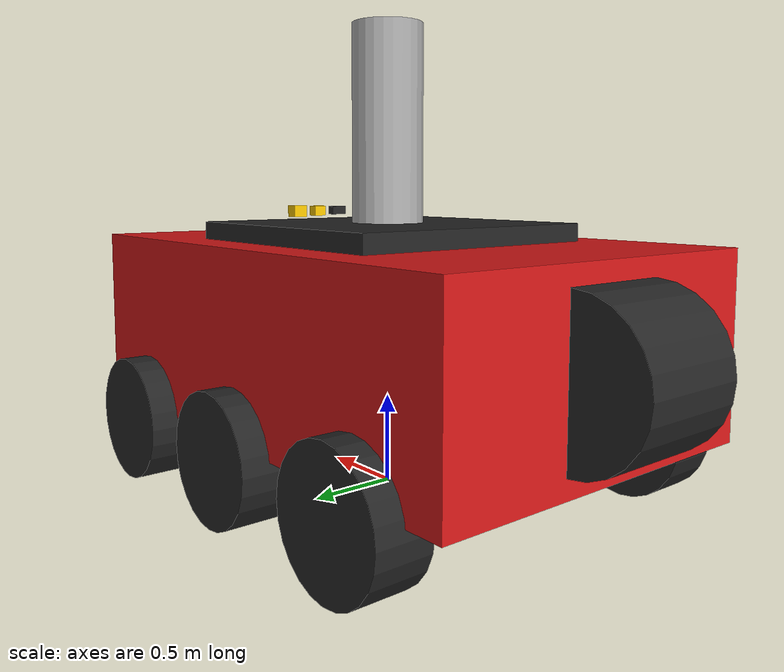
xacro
<?xml version="1.0"?>
<robot name="hr_sherpa" xmlns:xacro="http://www.ros.org/wiki/xacro">

  <!--  xacro 파라미터 (모든 치수를 한 곳에서 관리)                    -->

  <!-- 섀시 (차체 상부 구조 제외, 순수 하부 구조물 기준) -->
  <xacro:property name="base_length"   value="3.10"/>  <!-- NFRI 제원 L -->
  <xacro:property name="base_width"    value="2.00"/>  <!-- NFRI 제원 W -->
  <xacro:property name="base_height"   value="1.00"/>  <!-- 하부 차체 높이 (전체 1.9m 중 하부) -->
  <xacro:property name="base_mass"     value="500.0"/> <!-- 차체 골격 질량 (kg) -->

  <!-- 지면 간격 (6×6 대형 차량 기준) -->
  <xacro:property name="ground_clearance" value="0.05"/>

  <!-- 바퀴 (NFRI 제원) -->
  <xacro:property name="wheel_radius"  value="0.35"/>  <!-- 직경 0.7m → 반경 0.35m -->
  <xacro:property name="wheel_width"   value="0.30"/>
  <xacro:property name="wheel_mass"    value="60.0"/>  <!-- 인휠 모터 포함 추정 (kg) -->

  <!-- 바퀴 배치
       좌-우 중심간 2.0m → y_offset = 1.0m
       3축: 앞 x=+1.0 / 중간 x=0.0 / 뒤 x=-1.0 (축간격 1.0m 균등) -->
  <xacro:property name="wheel_y_offset" value="1.00"/>

  <!-- 센서 플랫폼 (차체 위 마운트 상판) -->
  <xacro:property name="sensor_platform_length" value="1.50"/>
  <xacro:property name="sensor_platform_width"  value="1.50"/>
  <xacro:property name="sensor_platform_height" value="0.10"/>
  <!-- base_link 기준 상단 표면 높이: base_height/2 + sensor_platform_height/2 -->
  <xacro:property name="sensor_platform_z"
    value="${base_height / 2.0 + sensor_platform_height / 2.0}"/>

  <xacro:property name="water_cannon_z"
    value="${base_height / 2.0 + sensor_platform_height + 0.35}"/>

  <!-- 호스릴 마운트: 후방 (x=-1.5m) -->
  <xacro:property name="hose_reel_x" value="-1.55"/>

  <!--  관성 매크로 (기존 UGV 패턴 동일)                               -->
  <xacro:macro name="box_inertia" params="m x y z">
    <inertial>
      <mass value="${m}"/>
      <inertia
        ixx="${m * (y*y + z*z) / 12.0}" ixy="0" ixz="0"
        iyy="${m * (x*x + z*z) / 12.0}" iyz="0"
        izz="${m * (x*x + y*y) / 12.0}"/>
    </inertial>
  </xacro:macro>

  <xacro:macro name="cylinder_inertia" params="m r h">
    <inertial>
      <mass value="${m}"/>
      <inertia
        ixx="${m * (3*r*r + h*h) / 12.0}" ixy="0" ixz="0"
        iyy="${m * (3*r*r + h*h) / 12.0}" iyz="0"
        izz="${m * r * r / 2.0}"/>
    </inertial>
  </xacro:macro>

  <!--  색상 정의 (셰르파 전용)                                        -->
  <material name="sherpa_red">
    <color rgba="0.85 0.10 0.10 1.0"/>
  </material>
  <material name="sherpa_dark">
    <color rgba="0.15 0.15 0.15 1.0"/>
  </material>
  <material name="sherpa_silver">
    <color rgba="0.70 0.70 0.70 1.0"/>
  </material>
  <material name="sherpa_yellow">
    <color rgba="1.0 0.80 0.0 1.0"/>
  </material>

  <!--  base_footprint (지면 투영)                                     -->
  <link name="base_footprint"/>

  <joint name="base_footprint_joint" type="fixed">
    <parent link="base_footprint"/>
    <child link="base_link"/>
    <!-- 지면에서 base_link 중심까지: 바퀴반경 + 지면간격 + 차체높이/2 -->
    <origin xyz="0 0 ${wheel_radius + ground_clearance + base_height / 2.0}" rpy="0 0 0"/>
  </joint>

  <!--  base_link (메인 차체 섀시)                                     -->
  <link name="base_link">
    <visual>
      <geometry>
        <box size="${base_length} ${base_width} ${base_height}"/>
      </geometry>
      <material name="sherpa_red"/>
    </visual>
    <collision>
      <geometry>
        <box size="${base_length} ${base_width} ${base_height}"/>
      </geometry>
    </collision>
    <xacro:box_inertia m="${base_mass}"
      x="${base_length}" y="${base_width}" z="${base_height}"/>
  </link>

  <!-- Gazebo 재질 (Gazebo는 URDF material 태그 무시) -->
  <gazebo reference="base_link">
    <material>
      <ambient>0.85 0.10 0.10 1.0</ambient>
      <diffuse>0.85 0.10 0.10 1.0</diffuse>
    </material>
  </gazebo>

  <!--  sensor_platform (차체 위 센서 마운트 상판)                     -->
  <link name="sensor_platform_link">
    <visual>
      <geometry>
        <box size="${sensor_platform_length} ${sensor_platform_width} ${sensor_platform_height}"/>
      </geometry>
      <material name="sherpa_dark"/>
    </visual>
    <collision>
      <geometry>
        <box size="${sensor_platform_length} ${sensor_platform_width} ${sensor_platform_height}"/>
      </geometry>
    </collision>
    <xacro:box_inertia m="5.0"
      x="${sensor_platform_length}" y="${sensor_platform_width}" z="${sensor_platform_height}"/>
  </link>

  <joint name="sensor_platform_joint" type="fixed">
    <parent link="base_link"/>
    <child link="sensor_platform_link"/>
    <origin xyz="0 0 ${sensor_platform_z}" rpy="0 0 0"/>
  </joint>

  <gazebo reference="sensor_platform_link">
    <material>
      <ambient>0.15 0.15 0.15 1.0</ambient>
      <diffuse>0.15 0.15 0.15 1.0</diffuse>
    </material>
  </gazebo>

  <!--  방수포 마운트 (water_cannon_link)                              -->
  <!--  위치: 상단 중앙, 전체 높이 기준 약 1.9m 지점                     -->
  <link name="water_cannon_link">
    <visual>
      <geometry>
        <!-- 방수포 본체: 원통형 근사 (직경 0.4m, 길이 1.5m) -->
        <cylinder radius="0.20" length="1.50"/>
      </geometry>
      <material name="sherpa_silver"/>
    </visual>
    <collision>
      <geometry>
        <cylinder radius="0.20" length="1.50"/>
      </geometry>
    </collision>
    <!-- 방수포 질량 (모터+노즐 포함 추정) -->
    <xacro:cylinder_inertia m="50.0" r="0.20" h="1.50"/>
  </link>

  <!-- fixed joint: 방수포는 별도 구동축 없음 (ROS2 제어는 상위 시스템에서) -->
  <joint name="water_cannon_joint" type="fixed">
    <parent link="base_link"/>
    <child link="water_cannon_link"/>
    <!-- base_link 중심 기준: 상단 중앙 (z: base_height/2 + cannon_height/2 + 마진) -->
    <origin xyz="0 0 ${water_cannon_z}" rpy="0 0 0"/>
  </joint>

  <gazebo reference="water_cannon_link">
    <material>
      <ambient>0.70 0.70 0.70 1.0</ambient>
      <diffuse>0.70 0.70 0.70 1.0</diffuse>
    </material>
  </gazebo>

  <!--  호스릴 마운트 (hose_reel_link)                                 -->
  <!--  위치: 후방 (x=-1.55m), 내부 100m 호스 수납                      -->
  <link name="hose_reel_link">
    <visual>
      <geometry>
        <!-- 호스릴: 원통형 (직경 0.8m, 폭 0.6m) -->
        <cylinder radius="0.40" length="0.60"/>
      </geometry>
      <material name="sherpa_dark"/>
    </visual>
    <collision>
      <geometry>
        <cylinder radius="0.40" length="0.60"/>
      </geometry>
    </collision>
    <!-- 호스릴 질량 (100m 호스 포함 추정) -->
    <xacro:cylinder_inertia m="80.0" r="0.40" h="0.60"/>
  </link>

  <joint name="hose_reel_joint" type="fixed">
    <parent link="base_link"/>
    <child link="hose_reel_link"/>
    <!-- base_link 후방, 높이는 차체 하단부 수납 위치 기준 -->
    <origin xyz="${hose_reel_x} 0 0" rpy="${pi/2} 0 0"/>
  </joint>

  <gazebo reference="hose_reel_link">
    <material>
      <ambient>0.15 0.15 0.15 1.0</ambient>
      <diffuse>0.15 0.15 0.15 1.0</diffuse>
    </material>
  </gazebo>

  <!--  바퀴 매크로 (6×6 인휠 독립 구동)                               -->
  <!--  continuous joint + Y축 회전 (기존 UGV 패턴 동일)               -->
  <xacro:macro name="sherpa_wheel" params="prefix x_pos y_pos">
    <link name="${prefix}_wheel_link">
      <visual>
        <!-- Y축 실린더 → roll 90도로 눕힘 -->
        <origin xyz="0 0 0" rpy="${pi/2} 0 0"/>
        <geometry>
          <cylinder radius="${wheel_radius}" length="${wheel_width}"/>
        </geometry>
        <material name="sherpa_dark"/>
      </visual>
      <collision>
        <origin xyz="0 0 0" rpy="${pi/2} 0 0"/>
        <geometry>
          <cylinder radius="${wheel_radius}" length="${wheel_width}"/>
        </geometry>
      </collision>
      <xacro:cylinder_inertia m="${wheel_mass}" r="${wheel_radius}" h="${wheel_width}"/>
    </link>

    <!-- continuous joint: velocity interface로 제어 -->
    <joint name="${prefix}_wheel_joint" type="continuous">
      <parent link="base_link"/>
      <child link="${prefix}_wheel_link"/>
      <!-- base_link 중심 기준 오프셋
           z: -(base_height/2 + ground_clearance) — 지면에 닿는 위치 -->
      <origin xyz="${x_pos} ${y_pos} ${-(base_height / 2.0 + ground_clearance)}" rpy="0 0 0"/>
      <axis xyz="0 1 0"/>
      <!-- 2톤급 차량 적합 감쇠·마찰 -->
      <dynamics damping="5.0" friction="2.0"/>
    </joint>

    <!-- Gazebo 물리: 대형 중량 차량 마찰 계수 -->
    <gazebo reference="${prefix}_wheel_link">
      <material>
        <ambient>0.10 0.10 0.10 1.0</ambient>
        <diffuse>0.10 0.10 0.10 1.0</diffuse>
      </material>
      <mu1>1.5</mu1>
      <mu2>1.5</mu2>
    </gazebo>
  </xacro:macro>

  <!-- 6개 바퀴 인스턴스
       앞축(x=+1.0) / 중간축(x=0.0) / 뒤축(x=-1.0)
       좌(y=+1.0) / 우(y=-1.0) -->
  <xacro:sherpa_wheel prefix="front_left"  x_pos="1.0"  y_pos="${wheel_y_offset}"/>
  <xacro:sherpa_wheel prefix="front_right" x_pos="1.0"  y_pos="${-wheel_y_offset}"/>
  <xacro:sherpa_wheel prefix="mid_left"    x_pos="0.0"  y_pos="${wheel_y_offset}"/>
  <xacro:sherpa_wheel prefix="mid_right"   x_pos="0.0"  y_pos="${-wheel_y_offset}"/>
  <xacro:sherpa_wheel prefix="rear_left"   x_pos="-1.0" y_pos="${wheel_y_offset}"/>
  <xacro:sherpa_wheel prefix="rear_right"  x_pos="-1.0" y_pos="${-wheel_y_offset}"/>

  <!--  ros2_control + 센서 include                                    -->
  <xacro:include filename="$(find argos_description)/urdf/sherpa/sherpa_ros2_control.urdf.xacro"/>
  <xacro:include filename="$(find argos_description)/urdf/sherpa/sherpa_sensors.urdf.xacro"/>

  <!-- ros2_control 매크로 호출 (기본값: 시뮬레이션 모드) -->
  <xacro:sherpa_ros2_control use_sim="true" namespace=""/>

  <!-- 센서 매크로 호출 (센서 플랫폼 위에 모두 장착) -->
  <xacro:sherpa_sensors parent_link="sensor_platform_link"/>

</robot>

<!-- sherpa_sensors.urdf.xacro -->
<robot xmlns:xacro="http://www.ros.org/wiki/xacro">

  <!--  공통 관성 (소형 센서 모듈 기준)                                  -->
  <xacro:macro name="sensor_inertia_small">
    <inertial>
      <mass value="0.3"/>
      <inertia ixx="0.00001" ixy="0" ixz="0"
               iyy="0.00001" iyz="0"
               izz="0.00001"/>
    </inertial>
  </xacro:macro>

  <!--  SWIR 열화상 카메라 (Short-Wave Infrared, 1,550nm)             -->
  <!--  특성: 연기·유리 투과, 화점 정밀 탐지                             -->
  <!--  FOV: 수평 56° / 수직 46° / 해상도 320×240                     -->
  <xacro:macro name="swir_thermal_camera"
    params="parent_link xyz:='0 0 0' rpy:='0 0 0'
            topic:='/thermal_swir/image_raw'
            camera_name:='swir_camera'">

    <link name="${camera_name}_link">
      <visual>
        <geometry>
          <!-- SWIR 카메라 하우징 근사 -->
          <box size="0.06 0.08 0.06"/>
        </geometry>
        <material name="sherpa_yellow"/>
      </visual>
      <collision>
        <geometry>
          <box size="0.06 0.08 0.06"/>
        </geometry>
      </collision>
      <xacro:sensor_inertia_small/>
    </link>

    <!-- 광학 프레임 (Z forward, X right, Y down — ROS 관례) -->
    <link name="${camera_name}_optical_link"/>

    <joint name="${camera_name}_joint" type="fixed">
      <parent link="${parent_link}"/>
      <child link="${camera_name}_link"/>
      <origin xyz="${xyz}" rpy="${rpy}"/>
    </joint>

    <joint name="${camera_name}_optical_joint" type="fixed">
      <parent link="${camera_name}_link"/>
      <child link="${camera_name}_optical_link"/>
      <origin xyz="0 0 0" rpy="${-pi/2} 0 ${-pi/2}"/>
    </joint>

    <gazebo reference="${camera_name}_link">
      <material>
        <ambient>1.0 0.80 0.0 1.0</ambient>
        <diffuse>1.0 0.80 0.0 1.0</diffuse>
      </material>
      <!-- Gazebo Harmonic: thermal_camera 타입으로 근사
           실제 SWIR(1,550nm)은 Gazebo에서 직접 지원하지 않음
           → thermal_camera + 커스텀 플러그인 조합으로 시뮬레이션 -->
      <sensor name="${camera_name}" type="thermal_camera">
        <always_on>true</always_on>
        <!-- SWIR 카메라 일반 업데이트 주기 -->
        <update_rate>30</update_rate>
        <topic>${topic}</topic>
        <gz_frame_id>${camera_name}_optical_link</gz_frame_id>
        <camera>
          <!-- 수평 FOV 56° = 0.9774 rad -->
          <horizontal_fov>0.9774</horizontal_fov>
          <image>
            <width>320</width>
            <height>240</height>
            <format>L8</format>
          </image>
          <clip>
            <near>0.1</near>
            <!-- SWIR 유효 거리 (연기 투과 기준) -->
            <far>100.0</far>
          </clip>
          <noise>
            <type>gaussian</type>
            <mean>0.0</mean>
            <stddev>0.005</stddev>
          </noise>
        </camera>
      </sensor>
    </gazebo>

  </xacro:macro>

  <!--  LWIR 열화상 카메라 (Long-Wave Infrared, 8,000~14,000nm)       -->
  <!--  특성: 전체 온도 분포 파악, 표준 열화상                           -->
  <!--  FOV: 수평 95° / 수직 74° / 해상도 320×240                     -->
  <xacro:macro name="lwir_thermal_camera"
    params="parent_link xyz:='0 0 0' rpy:='0 0 0'
            topic:='/thermal_lwir/image_raw'
            camera_name:='lwir_camera'">

    <link name="${camera_name}_link">
      <visual>
        <geometry>
          <!-- LWIR 카메라 하우징 (SWIR보다 렌즈 구경 큼) -->
          <box size="0.07 0.09 0.07"/>
        </geometry>
        <material name="sherpa_yellow"/>
      </visual>
      <collision>
        <geometry>
          <box size="0.07 0.09 0.07"/>
        </geometry>
      </collision>
      <xacro:sensor_inertia_small/>
    </link>

    <link name="${camera_name}_optical_link"/>

    <joint name="${camera_name}_joint" type="fixed">
      <parent link="${parent_link}"/>
      <child link="${camera_name}_link"/>
      <origin xyz="${xyz}" rpy="${rpy}"/>
    </joint>

    <joint name="${camera_name}_optical_joint" type="fixed">
      <parent link="${camera_name}_link"/>
      <child link="${camera_name}_optical_link"/>
      <origin xyz="0 0 0" rpy="${-pi/2} 0 ${-pi/2}"/>
    </joint>

    <gazebo reference="${camera_name}_link">
      <material>
        <ambient>1.0 0.60 0.0 1.0</ambient>
        <diffuse>1.0 0.60 0.0 1.0</diffuse>
      </material>
      <sensor name="${camera_name}" type="thermal_camera">
        <always_on>true</always_on>
        <!-- LWIR 표준 프레임 레이트 -->
        <update_rate>25</update_rate>
        <topic>${topic}</topic>
        <gz_frame_id>${camera_name}_optical_link</gz_frame_id>
        <camera>
          <!-- 수평 FOV 95° = 1.6580 rad -->
          <horizontal_fov>1.6580</horizontal_fov>
          <image>
            <width>320</width>
            <height>240</height>
            <format>L8</format>
          </image>
          <clip>
            <near>0.1</near>
            <!-- LWIR 유효 거리 -->
            <far>80.0</far>
          </clip>
          <noise>
            <type>gaussian</type>
            <mean>0.0</mean>
            <stddev>0.008</stddev>
          </noise>
        </camera>
      </sensor>
    </gazebo>

  </xacro:macro>

  <!--  LiDAR (기존 UGV 동일 스펙: 360°, 10m)                         -->
  <!--  대형 차량이므로 마운트 높이 조정                                  -->
  <xacro:macro name="sherpa_lidar"
    params="parent_link xyz:='0 0 0' rpy:='0 0 0'
            topic:='/scan'">

    <link name="lidar_link">
      <visual>
        <geometry>
          <!-- 산업용 LiDAR 하우징 크기로 scale-up -->
          <cylinder radius="0.06" length="0.08"/>
        </geometry>
        <material name="sherpa_dark"/>
      </visual>
      <collision>
        <geometry>
          <cylinder radius="0.06" length="0.08"/>
        </geometry>
      </collision>
      <inertial>
        <mass value="1.0"/>
        <inertia ixx="0.001" ixy="0" ixz="0"
                 iyy="0.001" iyz="0"
                 izz="0.001"/>
      </inertial>
    </link>

    <joint name="lidar_joint" type="fixed">
      <parent link="${parent_link}"/>
      <child link="lidar_link"/>
      <origin xyz="${xyz}" rpy="${rpy}"/>
    </joint>

    <gazebo reference="lidar_link">
      <material>
        <ambient>0.15 0.15 0.15 1.0</ambient>
        <diffuse>0.15 0.15 0.15 1.0</diffuse>
      </material>
      <!-- Gazebo Harmonic: gpu_lidar 사용 (ray 타입 지원 중단) -->
      <sensor name="gpu_lidar" type="gpu_lidar">
        <always_on>true</always_on>
        <update_rate>10</update_rate>
        <topic>${topic}</topic>
        <gz_frame_id>lidar_link</gz_frame_id>
        <lidar>
          <scan>
            <horizontal>
              <samples>360</samples>
              <resolution>1</resolution>
              <min_angle>-3.14159</min_angle>
              <max_angle>3.14159</max_angle>
            </horizontal>
          </scan>
          <range>
            <min>0.20</min>
            <max>10.0</max>
            <resolution>0.01</resolution>
          </range>
          <noise>
            <type>gaussian</type>
            <mean>0.0</mean>
            <stddev>0.01</stddev>
          </noise>
        </lidar>
      </sensor>
    </gazebo>

  </xacro:macro>

  <!--  RGB 카메라 (640×480, 전방 육안 확인용)                          -->
  <xacro:macro name="sherpa_rgb_camera"
    params="parent_link xyz:='0 0 0' rpy:='0 0 0'
            topic:='/camera/image_raw'
            camera_name:='front_camera'">

    <link name="${camera_name}_link">
      <visual>
        <geometry>
          <box size="0.05 0.10 0.05"/>
        </geometry>
        <material name="sherpa_dark"/>
      </visual>
      <collision>
        <geometry>
          <box size="0.05 0.10 0.05"/>
        </geometry>
      </collision>
      <xacro:sensor_inertia_small/>
    </link>

    <link name="${camera_name}_optical_link"/>

    <joint name="${camera_name}_joint" type="fixed">
      <parent link="${parent_link}"/>
      <child link="${camera_name}_link"/>
      <origin xyz="${xyz}" rpy="${rpy}"/>
    </joint>

    <joint name="${camera_name}_optical_joint" type="fixed">
      <parent link="${camera_name}_link"/>
      <child link="${camera_name}_optical_link"/>
      <origin xyz="0 0 0" rpy="${-pi/2} 0 ${-pi/2}"/>
    </joint>

    <gazebo reference="${camera_name}_link">
      <material>
        <ambient>0.15 0.15 0.15 1.0</ambient>
        <diffuse>0.15 0.15 0.15 1.0</diffuse>
      </material>
      <sensor name="${camera_name}" type="camera">
        <always_on>true</always_on>
        <update_rate>30</update_rate>
        <topic>${topic}</topic>
        <gz_frame_id>${camera_name}_optical_link</gz_frame_id>
        <camera>
          <!-- 수평 FOV 100° = 1.7453 rad (소방 현장 광각 확보) -->
          <horizontal_fov>1.7453</horizontal_fov>
          <image>
            <width>640</width>
            <height>480</height>
            <format>R8G8B8</format>
          </image>
          <clip>
            <near>0.1</near>
            <far>100.0</far>
          </clip>
          <noise>
            <type>gaussian</type>
            <mean>0.0</mean>
            <stddev>0.007</stddev>
          </noise>
        </camera>
      </sensor>
    </gazebo>

  </xacro:macro>

  <!--  IMU (250Hz, 자세 추정 + 경사 지면 보정)                         -->
  <xacro:macro name="sherpa_imu"
    params="parent_link xyz:='0 0 0' rpy:='0 0 0'
            topic:='/imu/data'">

    <link name="imu_link">
      <visual>
        <geometry>
          <box size="0.03 0.03 0.015"/>
        </geometry>
        <material name="sherpa_yellow"/>
      </visual>
      <collision>
        <geometry>
          <box size="0.03 0.03 0.015"/>
        </geometry>
      </collision>
      <inertial>
        <mass value="0.05"/>
        <inertia ixx="0.000001" ixy="0" ixz="0"
                 iyy="0.000001" iyz="0"
                 izz="0.000001"/>
      </inertial>
    </link>

    <joint name="imu_joint" type="fixed">
      <parent link="${parent_link}"/>
      <child link="imu_link"/>
      <origin xyz="${xyz}" rpy="${rpy}"/>
    </joint>

    <gazebo reference="imu_link">
      <material>
        <ambient>1.0 0.8 0.0 1.0</ambient>
        <diffuse>1.0 0.8 0.0 1.0</diffuse>
      </material>
      <sensor name="imu" type="imu">
        <always_on>true</always_on>
        <!-- NFRI 제원: 250Hz -->
        <update_rate>250</update_rate>
        <topic>${topic}</topic>
        <gz_frame_id>imu_link</gz_frame_id>
        <imu>
          <!-- 대형 차량 환경: 진동 노이즈 파라미터 조정 -->
          <angular_velocity>
            <x><noise type="gaussian"><mean>0</mean><stddev>0.0005</stddev></noise></x>
            <y><noise type="gaussian"><mean>0</mean><stddev>0.0005</stddev></noise></y>
            <z><noise type="gaussian"><mean>0</mean><stddev>0.0005</stddev></noise></z>
          </angular_velocity>
          <linear_acceleration>
            <x><noise type="gaussian"><mean>0</mean><stddev>0.020</stddev></noise></x>
            <y><noise type="gaussian"><mean>0</mean><stddev>0.020</stddev></noise></y>
            <z><noise type="gaussian"><mean>0</mean><stddev>0.020</stddev></noise></z>
          </linear_acceleration>
        </imu>
      </sensor>
    </gazebo>

  </xacro:macro>

  <!--  레이더 (depth_camera로 근사)                                    -->
  <!--  실제 레이더: FOV 30°, 50m 탐지                                  -->
  <!--  Gazebo에 레이더 센서 타입 없음 → depth_camera로 기능 근사        -->
  <!--  추후: custom Gazebo plugin으로 실제 레이더 특성 재현 가능         -->
  <xacro:macro name="sherpa_radar"
    params="parent_link xyz:='0 0 0' rpy:='0 0 0'
            topic:='/radar/points'
            sensor_name:='radar'">

    <link name="${sensor_name}_link">
      <visual>
        <geometry>
          <!-- 레이더 안테나 모듈 근사 -->
          <box size="0.15 0.20 0.05"/>
        </geometry>
        <material name="sherpa_silver"/>
      </visual>
      <collision>
        <geometry>
          <box size="0.15 0.20 0.05"/>
        </geometry>
      </collision>
      <inertial>
        <mass value="2.0"/>
        <inertia ixx="0.0005" ixy="0" ixz="0"
                 iyy="0.0005" iyz="0"
                 izz="0.0005"/>
      </inertial>
    </link>

    <link name="${sensor_name}_optical_link"/>

    <joint name="${sensor_name}_joint" type="fixed">
      <parent link="${parent_link}"/>
      <child link="${sensor_name}_link"/>
      <origin xyz="${xyz}" rpy="${rpy}"/>
    </joint>

    <joint name="${sensor_name}_optical_joint" type="fixed">
      <parent link="${sensor_name}_link"/>
      <child link="${sensor_name}_optical_link"/>
      <origin xyz="0 0 0" rpy="${-pi/2} 0 ${-pi/2}"/>
    </joint>

    <gazebo reference="${sensor_name}_link">
      <material>
        <ambient>0.70 0.70 0.70 1.0</ambient>
        <diffuse>0.70 0.70 0.70 1.0</diffuse>
      </material>
      <!-- depth_camera로 레이더 기능 근사
           FOV 30° = 0.5236 rad, 최대 50m -->
      <sensor name="${sensor_name}" type="depth_camera">
        <always_on>true</always_on>
        <!-- 레이더 일반 업데이트 주기 -->
        <update_rate>20</update_rate>
        <topic>${topic}</topic>
        <gz_frame_id>${sensor_name}_optical_link</gz_frame_id>
        <camera>
          <!-- 레이더 FOV 30° = 0.5236 rad (좁은 빔 근사) -->
          <horizontal_fov>0.5236</horizontal_fov>
          <image>
            <!-- 레이더 포인트클라우드 해상도 (낮은 해상도로 레이더 특성 근사) -->
            <width>128</width>
            <height>64</height>
            <format>R_FLOAT32</format>
          </image>
          <clip>
            <near>1.0</near>
            <!-- 레이더 최대 탐지 거리 50m -->
            <far>50.0</far>
          </clip>
        </camera>
      </sensor>
    </gazebo>

  </xacro:macro>

  <!--  셰르파 전체 센서 패키지 (최상위 매크로)                           -->
  <!--  sherpa.urdf.xacro에서 1회 호출                                 -->
  <xacro:macro name="sherpa_sensors" params="parent_link">

    <!-- SWIR 열화상: 전방 상단 중앙 (연기 투과 탐지) -->
    <xacro:swir_thermal_camera
      parent_link="${parent_link}"
      xyz="0.70 0 0.10"
      rpy="0 0 0"
      topic="/thermal_swir/image_raw"
      camera_name="swir_camera"/>

    <!-- LWIR 열화상: 전방, SWIR 바로 옆 (온도 분포 전체 화면) -->
    <xacro:lwir_thermal_camera
      parent_link="${parent_link}"
      xyz="0.70 0.15 0.10"
      rpy="0 0 0"
      topic="/thermal_lwir/image_raw"
      camera_name="lwir_camera"/>

    <!-- LiDAR: 센서 플랫폼 최상단 중앙 (360° 시야 확보) -->
    <xacro:sherpa_lidar
      parent_link="${parent_link}"
      xyz="0 0 0.15"
      rpy="0 0 0"
      topic="/scan"/>

    <!-- RGB 카메라: 전방 중앙 (육안 확인) -->
    <xacro:sherpa_rgb_camera
      parent_link="${parent_link}"
      xyz="0.70 -0.15 0.10"
      rpy="0 0 0"
      topic="/camera/image_raw"
      camera_name="front_camera"/>

    <!-- IMU: 센서 플랫폼 중심 (자세 추정, 진동 최소화 위치) -->
    <xacro:sherpa_imu
      parent_link="${parent_link}"
      xyz="0 0 0.05"
      rpy="0 0 0"
      topic="/imu/data"/>

    <!-- 레이더: 전방 하단 (연기·장애물 원거리 탐지, 50m) -->
    <xacro:sherpa_radar
      parent_link="${parent_link}"
      xyz="0.70 0 -0.05"
      rpy="0 0 0"
      topic="/radar/points"
      sensor_name="radar"/>

  </xacro:macro>

</robot>
